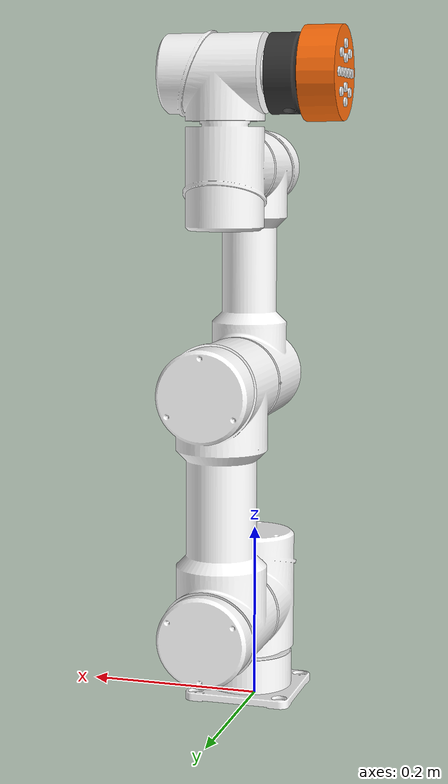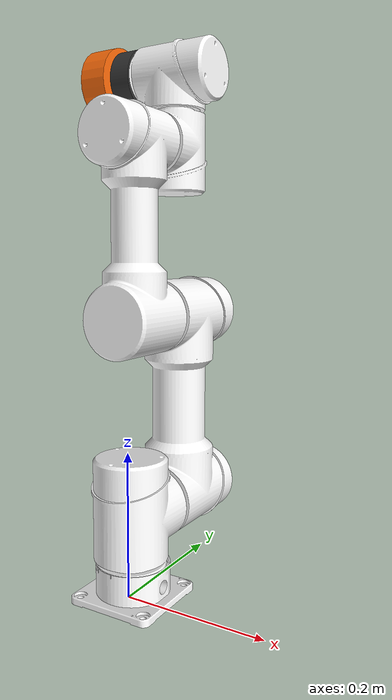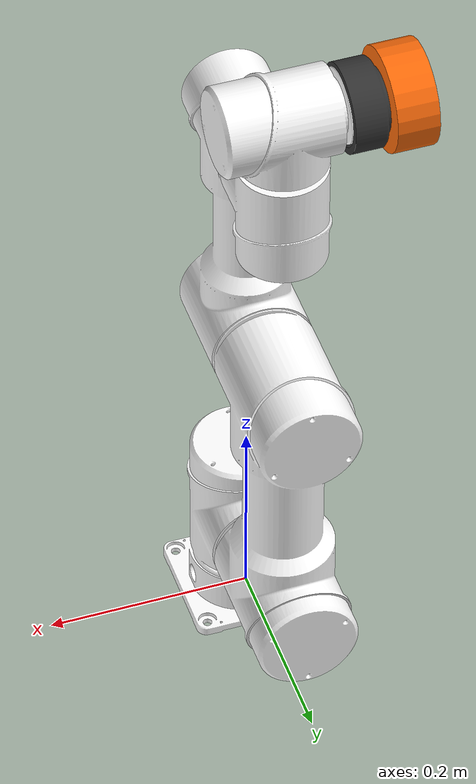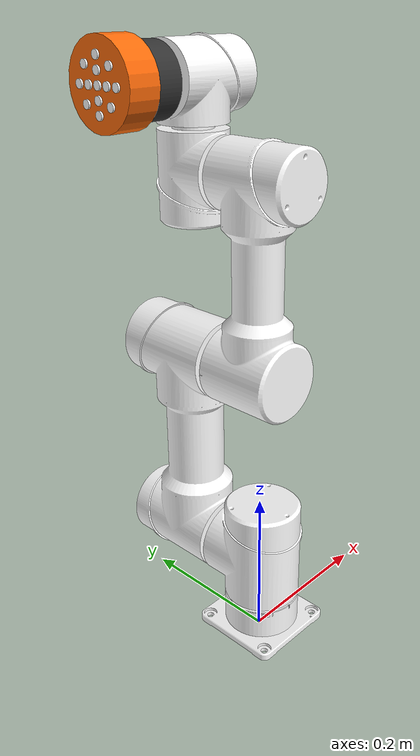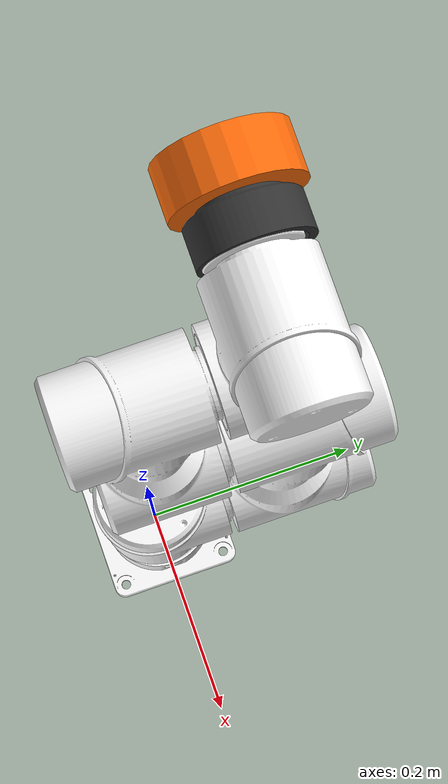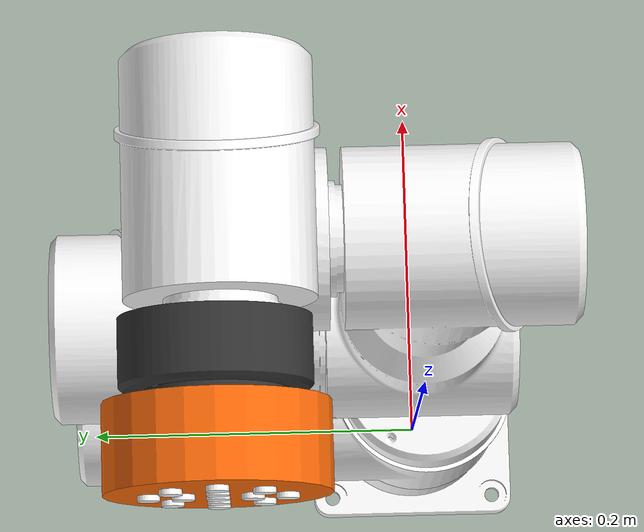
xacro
<?xml version="1.0"?>
<robot xmlns:xacro="http://www.ros.org/wiki/xacro" name="elerobot">

  <!-- Is the robot being simulated in gazebo?" -->
  <xacro:arg name="gazebo" default="true" />
  <!-- Intel RealSense i435 -->
  <xacro:arg name="with_camera" default="false" />

  <!-- Robot name -->
  <xacro:property name="arm_id" value="elerobot" />

  <xacro:include filename="$(find elerobot_description)/xacro/elerobot.xacro"/>

  <xacro:if value="$(arg gazebo)">
    <xacro:elerobot arm_id="${arm_id}" with_camera="$(arg with_camera)"/>

    <!-- gazebo color -->
    <xacro:gazebo_white link="${arm_id}_link0"/>
    <xacro:gazebo_white link="${arm_id}_link1"/>
    <xacro:gazebo_white link="${arm_id}_link2"/>
    <xacro:gazebo_white link="${arm_id}_link3"/>
    <xacro:gazebo_white link="${arm_id}_link4"/>
    <xacro:gazebo_white link="${arm_id}_link5"/>
    <xacro:gazebo_grey  link="${arm_id}_link6"/>
    <xacro:gazebo_red   link="${arm_id}_link7"/>

    <!-- gazebo joint hardware interface -->
    <xacro:gazebo-joint joint="${arm_id}_joint0" transmission="hardware_interface/PositionJointInterface" />
    <xacro:gazebo-joint joint="${arm_id}_joint1" transmission="hardware_interface/PositionJointInterface" />
    <xacro:gazebo-joint joint="${arm_id}_joint2" transmission="hardware_interface/PositionJointInterface" />
    <xacro:gazebo-joint joint="${arm_id}_joint3" transmission="hardware_interface/PositionJointInterface" />
    <xacro:gazebo-joint joint="${arm_id}_joint4" transmission="hardware_interface/PositionJointInterface" />
    <xacro:gazebo-joint joint="${arm_id}_joint5" transmission="hardware_interface/PositionJointInterface" />

    <!-- Gazebo plugin for ROS control -->
    <gazebo> <!-- controller -->
      <plugin name="gazebo_ros_control" filename="libgazebo_ros_control.so">
        <robotNamespace>/</robotNamespace>
        <controlPeriod>0.001</controlPeriod>
        <robotSimType>gazebo_ros_control/DefaultRobotHWSim</robotSimType>
        <legacyModeNS>true</legacyModeNS>
      </plugin>
      <self_collide>true</self_collide>

      <plugin filename="libgazebo_ros_moveit_planning_scene.so" name="gazebo_ros_moveit_planning_scene">
        <topicName>/planning_scene</topicName>
        <sceneName>factory</sceneName>
        <robotName>/${arm_id}</robotName>
        <updatePeriod>0.5</updatePeriod>
      </plugin>

      <plugin name="gravity_compensation" filename="libGravityCompensationPlugin.so"/>
    </gazebo>
  </xacro:if>

</robot>

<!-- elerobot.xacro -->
<robot xmlns:xacro="http://www.ros.org/wiki/xacro" name="elerobot">

  <!-- module -->
  <xacro:include filename="$(find elerobot_description)/xacro/color.xacro"/>
  <xacro:include filename="$(find elerobot_description)/xacro/property.xacro"/>
  <xacro:include filename="$(find elerobot_description)/xacro/vacuum_group.xacro"/>

  <!-- elephant panda robot p3 type description-->
  <xacro:macro name="elerobot" params="arm_id:='elerobot' with_camera:='false'">

    <!-- di435  frame definition can be found at https://github.com/IntelRealSense/librealsense/blob/master/doc/d435i.md -->
    <xacro:if value="${with_camera}">
      <xacro:include filename="$(find realsense_gazebo_description)/urdf/_d435i.urdf.xacro"/>
      <xacro:sensor_d435i  parent="${arm_id}_link7" name="D435i_camera" topics_ns="D435i_camera" enable_pointCloud="true" align_depth="false">
        <origin xyz="0.0 0.0 0.0" rpy="0.0 ${-PI/2} ${PI/2}"/>
      </xacro:sensor_d435i>
    </xacro:if>

    <!-- LINK DESCRIPTION -->
    <!-- Gazebo requires a joint to a link called "world" for statically mounted robots -->
    <link name="world" />
    <joint name="world_joint" type="fixed">
      <origin xyz="0.005 0.0 0.0" rpy="0.0 0.0 0.0"/>
      <parent link="world"/>
      <child link="${arm_id}_link0"/>
    </joint>

    <!-- link0 -->
    <link name="${arm_id}_link0">
      <visual>
        <origin xyz="-0.06 -0.06 0.053" rpy="${-PI/2} 0.0 0.0"/>
        <geometry>
          <mesh filename="${mesh_file_path}${mesh_prefix}0${mesh_suffix}" scale="0.001 0.001 0.001"/>
        </geometry>
        <material name="white"/>
      </visual>
      <collision>
        <origin xyz="-0.06 -0.06 0.053" rpy="${-PI/2} 0.0 0.0"/>
        <geometry>
          <mesh filename="${mesh_file_path}${mesh_prefix}0${mesh_suffix}" scale="0.001 0.001 0.001"/>
        </geometry>
        <material name="white"/>
      </collision>
      <inertial>
        <origin xyz="-0.0008 0.0091 0.0" rpy="0.0 0.0 0.0"/>
        <mass value="${link0_mass}"/>
        <inertia ixx="0.0017" ixy="0.0000" ixz="0.0000"
                              iyy="0.0028"  iyz="0.0000"
                                            izz="0.0017"/>
      </inertial>
    </link>

    <!-- link1 -->
    <link name="${arm_id}_link1">
      <visual>
        <origin xyz="-0.0528 -0.0528 -0.072" rpy="0.0 0.0 0.0"/>
        <geometry>
          <mesh filename="${mesh_file_path}${mesh_prefix}1${mesh_suffix}" scale="0.001 0.001 0.001"/>
        </geometry>
        <material name="white"/>
      </visual>
      <collision>
        <origin xyz="-0.0528 -0.0528 -0.072" rpy="0.0 0.0 0.0"/>
        <geometry>
          <mesh filename="${mesh_file_path}${mesh_prefix}1${mesh_suffix}" scale="0.001 0.001 0.001"/>
        </geometry>
        <material name="white"/>
      </collision>
      <inertial>
        <origin xyz="0.0 0.0032 0.0615" rpy="0.0 0.0 0.0"/>
        <mass value="${link1_mass}"/>
        <inertia ixx="0.0156" ixy="0.0000" ixz="0.0000"
                              iyy="0.0154" iyz="0.0004"
                                           izz="0.0034"/>
      </inertial>
    </link>

    <!-- link2 -->
    <link name="${arm_id}_link2">
      <visual>
        <origin xyz="-0.054 -0.053 0.15" rpy="${-PI/2} 0.0 0.0"/>
        <geometry>
          <mesh filename="${mesh_file_path}${mesh_prefix}2${mesh_suffix}" scale="0.001 0.001 0.001"/>
        </geometry>
        <material name="white"/>
      </visual>
      <collision>
        <origin xyz="-0.054 -0.053 0.15" rpy="${-PI/2} 0.0 0.0"/>
        <geometry>
          <mesh filename="${mesh_file_path}${mesh_prefix}2${mesh_suffix}" scale="0.001 0.001 0.001"/>
        </geometry>
        <material name="white"/>
      </collision>
      <inertial>
        <origin xyz="0.0 -0.0049 0.0" rpy="0.0 0.0 0.0"/>
        <mass value="${link2_mass}"/>
        <inertia ixx="0.0137" ixy="0.0000" ixz="0.0000"
                              iyy="0.0940" iyz="0.0000"
                                           izz="0.0997"/>
      </inertial>
    </link>

    <!-- link3 -->
    <link name="${arm_id}_link3">
      <visual>
        <origin xyz="0.2815 0.078 0.017" rpy="${-PI/2} 0.0 ${PI}"/>
        <geometry>
          <mesh filename="${mesh_file_path}${mesh_prefix}3${mesh_suffix}" scale="0.001 0.001 0.001"/>
        </geometry>
        <material name="white"/>
      </visual>
      <collision>
        <origin xyz="0.2815 0.078 0.017" rpy="${-PI/2} 0.0 ${PI}"/>
        <geometry>
          <mesh filename="${mesh_file_path}${mesh_prefix}3${mesh_suffix}" scale="0.001 0.001 0.001"/>
        </geometry>
        <material name="white"/>
      </collision>
      <inertial>
        <origin xyz="0.0052 0.0037 0.0" rpy="0.0 0.0 0.0"/>
        <mass value="${link3_mass}"/>
        <inertia ixx="0.0049" ixy="-0.0001" ixz="0.0000"
                              iyy="0.0446"  iyz="0.0000"
                                            izz="0.0456"/>
      </inertial>
    </link>

    <!-- link4 -->
    <link name="${arm_id}_link4">
      <visual>
        <origin xyz="-0.0772 -0.055 0.043" rpy="${-PI/2} 0.0 0.0"/>
        <geometry>
          <mesh filename="${mesh_file_path}${mesh_prefix}4${mesh_suffix}" scale="0.001 0.001 0.001"/>
        </geometry>
        <material name="white"/>
      </visual>
      <collision>
        <origin xyz="-0.0772 -0.055 0.043" rpy="${-PI/2} 0.0 0.0"/>
        <geometry>
          <mesh filename="${mesh_file_path}${mesh_prefix}4${mesh_suffix}" scale="0.001 0.001 0.001"/>
        </geometry>
        <material name="white"/>
      </collision>
      <inertial>
        <origin xyz="0.0 0.0 0.05" rpy="0.0 0.0 0.0"/>
        <mass value="${link4_mass}"/>
        <inertia ixx="0.01" ixy="0.0" ixz="0.0000"
                              iyy="0.01" iyz="0.0"
                                         izz="0.0"/>
      </inertial>
    </link>

    <!-- link5 -->
    <link name="${arm_id}_link5">
      <visual>
        <origin xyz="0.0745 0.0605 0.046" rpy="${-PI/2} 0.0 ${PI}"/>
        <geometry>
          <mesh filename="${mesh_file_path}${mesh_prefix}5${mesh_suffix}" scale="0.001 0.001 0.001"/>
        </geometry>
        <material name="white"/>
      </visual>
      <collision>
        <origin xyz="0.0745 0.0605 0.046" rpy="${-PI/2} 0.0 ${PI}"/>
        <geometry>
          <mesh filename="${mesh_file_path}${mesh_prefix}5${mesh_suffix}" scale="0.001 0.001 0.001"/>
        </geometry>
        <material name="white"/>
      </collision>
      <inertial>
        <origin xyz="0.0 0.0023 0.0506" rpy="0.0 0.0 0.0"/>
        <mass value="${link5_mass}"/>
        <inertia ixx="0.0059" ixy="0.0" ixz="0.0000"
                              iyy="0.0059" iyz="0.0002"
                                         izz="0.0014"/>
      </inertial>
    </link>

    <!-- link6 -->
    <link name="${arm_id}_link6">
      <visual>
        <origin xyz="-0.0425 -0.0425 -0.007" rpy="0.0 0.0 0.0"/>
        <geometry>
          <mesh filename="${mesh_file_path}${mesh_prefix}6${mesh_suffix}" scale="0.001 0.001 0.001"/>
        </geometry>
        <material name="grey"/>
      </visual>
      <collision>
        <origin xyz="-0.0425 -0.0425 -0.007" rpy="0.0 0.0 0.0"/>
        <geometry>
          <mesh filename="${mesh_file_path}${mesh_prefix}6${mesh_suffix}" scale="0.001 0.001 0.001"/>
        </geometry>
        <material name="grey"/>
      </collision>
      <inertial>
        <origin xyz="-0.0001 -0.00033 0.02" rpy="0.0 0.0 0.0"/>
        <mass value="${link6_mass}"/>
        <inertia ixx="0.0003" ixy="0.0"    ixz="0.0"
                              iyy="0.0003" iyz="0.0"
                                           izz="0.0003"/>
      </inertial>
    </link>

    <link name="${arm_id}_link7">
      <visual>
        <origin xyz="0.0 0.0 ${-link7_h/2}" rpy="0.0 0.0 0.0"/>
        <geometry>
          <cylinder radius="${link7_r}" length="${link7_h}"/>
        </geometry>
        <material name="orange"/>
      </visual>
      <collision>
        <origin xyz="0.0 0.0 ${-link7_h/2}" rpy="0.0 0.0 0.0"/>
        <geometry>
          <cylinder radius="${link7_r}" length="${link7_h}"/>
        </geometry>
      </collision>
      <inertial>
          <origin xyz="0.0 0.0 0.0" rpy="0.0 0.0 0.0"/>
          <mass value="${link7_mass}"/>
          <xacro:cylinder_inertia m="${link7_mass}" r="${link7_r}" h="${link7_h}"/>
      </inertial>
    </link>

    <!-- JOINT DESCRIPTION -->
    <!-- joint0 Locked -->
    <joint name="${arm_id}_joint0" type="revolute">
      <axis xyz="0 0 1"/>
      <origin xyz="0.0 0.0 ${joint0_z}" rpy="0.0 0.0 0.0"/>
      <safety_controller k_position="50.0" k_velocity="20.0" soft_lower_limit="${-PI*360/180}" soft_upper_limit="${PI*360/180}"/>
      <limit acceleration="15" effort="500.0" lower="${-PI*360/180}" upper="${PI*360/180}" velocity="${180/180*PI}"/>
      <parent link="${arm_id}_link0"/>
      <child link="${arm_id}_link1"/>
      <dynamics D="1" K="7000" mu_coulomb="0" mu_viscous="16" damping="0.003" friction="0.01"/>
    </joint>

    <!-- joint1 -->
    <joint name="${arm_id}_joint1" type="revolute">
      <axis xyz="0 0 1"/>
      <origin xyz="0.0 ${joint1_y} 0.0" rpy="0.0 ${-PI/2} ${-PI/2}"/>
      <safety_controller k_position="50.0" k_velocity="20.0" soft_lower_limit="${-PI*360/180}" soft_upper_limit="${PI*360/180}"/>
      <limit acceleration="15" effort="500.0" lower="${-PI*360/180}" upper="${PI*360/180}" velocity="${180/180*PI}"/>
      <parent link="${arm_id}_link1"/>
      <child link="${arm_id}_link2"/>
      <dynamics D="1" K="7000" mu_coulomb="0" mu_viscous="16" damping="0.003" friction="0.01"/>
    </joint>

    <!-- joint2 -->
    <joint name="${arm_id}_joint2" type="revolute">
      <axis xyz="0 0 1"/>
      <origin xyz="${joint2_x} 0.0 0.0" rpy="0.0 0.0 0.0"/>
      <safety_controller k_position="50.0" k_velocity="20.0" soft_lower_limit="${-PI*360/180}" soft_upper_limit="${PI*360/180}"/>
      <limit acceleration="15" effort="500.0" lower="${-PI*360/180}" upper="${PI*360/180}" velocity="${180/180*PI}"/>
      <parent link="${arm_id}_link2"/>
      <child link="${arm_id}_link3"/>
      <dynamics D="1" K="7000" mu_coulomb="0" mu_viscous="16" damping="0.003" friction="0.01"/>
    </joint>

    <!-- joint3 -->
    <joint name="${arm_id}_joint3" type="revolute">
      <axis xyz="0 0 1"/>
      <origin xyz="${joint3_x} 0.0 ${joint3_z}" rpy="0.0 0.0 ${PI/2}"/>
      <safety_controller k_position="50.0" k_velocity="20.0" soft_lower_limit="${-PI*360/180}" soft_upper_limit="${PI*360/180}"/>
      <limit acceleration="15" effort="500.0" lower="${-PI*360/180}" upper="${PI*360/180}" velocity="${208/180*PI}"/>
      <parent link="${arm_id}_link3"/>
      <child link="${arm_id}_link4"/>
      <dynamics D="1" K="7000" mu_coulomb="0" mu_viscous="16" damping="0.003" friction="0.01"/>
    </joint>

    <!-- joint4 -->
    <joint name="${arm_id}_joint4" type="revolute">
      <axis xyz="0 0 1"/>
      <origin xyz="0.0 ${joint4_y} 0.0" rpy="0.0 ${-PI/2} ${PI/2}"/>
      <safety_controller k_position="50.0" k_velocity="20.0" soft_lower_limit="${-PI*360/180}" soft_upper_limit="${PI*360/180}"/>
      <limit acceleration="15" effort="500.0" lower="${-PI*360/180}" upper="${PI*360/180}" velocity="${208/180*PI}"/>
      <parent link="${arm_id}_link4"/>
      <child link="${arm_id}_link5"/>
      <dynamics D="1" K="7000" mu_coulomb="0" mu_viscous="16" damping="0.003" friction="0.01"/>
    </joint>

    <!-- joint5 Locked -->
    <joint name="${arm_id}_joint5" type="revolute">
      <axis xyz="0 0 1"/>
      <origin xyz="0.0 ${joint5_y} 0.0" rpy="${-PI/2} 0.0 0.0"/>
      <safety_controller k_position="50.0" k_velocity="20.0" soft_lower_limit="${-PI*360/180}" soft_upper_limit="${PI*360/180}"/>
      <limit acceleration="15" effort="500.0" lower="${-PI*360/180}" upper="${PI*360/180}" velocity="${208/180*PI}"/>
      <parent link="${arm_id}_link5"/>
      <child link="${arm_id}_link6"/>
      <dynamics D="1" K="7000" mu_coulomb="0" mu_viscous="16" damping="0.003" friction="0.01"/>
    </joint>

    <!-- joint6 -->
    <joint name="${arm_id}_joint6" type="fixed">
      <origin xyz="0.0 0.0 ${joint6_z}" rpy="0.0 0.0 0.0"/>
      <parent link="${arm_id}_link6"/>
      <child link="${arm_id}_link7"/>
    </joint>

    <!-- vacuum gripper -->
    <xacro:vacuum_group parent_link="${arm_id}_link7" index="1" vacuum_x="0"                    vacuum_y="0"                   vacuum_z="${vacuum_length/2}"/>
    <xacro:vacuum_group parent_link="${arm_id}_link7" index="2" vacuum_x="${vacuum_radius*3}"   vacuum_y="0"                   vacuum_z="${vacuum_length/2}"/>
    <xacro:vacuum_group parent_link="${arm_id}_link7" index="3" vacuum_x="${-vacuum_radius*3}"  vacuum_y="0"                   vacuum_z="${vacuum_length/2}"/>
    <xacro:vacuum_group parent_link="${arm_id}_link7" index="4" vacuum_x="0"                    vacuum_y="${vacuum_radius*3}"  vacuum_z="${vacuum_length/2}"/>
    <xacro:vacuum_group parent_link="${arm_id}_link7" index="5" vacuum_x="0"                    vacuum_y="${-vacuum_radius*3}" vacuum_z="${vacuum_length/2}"/>
    <xacro:vacuum_group parent_link="${arm_id}_link7" index="6" vacuum_x="${vacuum_radius*6}"   vacuum_y="0"                   vacuum_z="${vacuum_length/2}"/>
    <xacro:vacuum_group parent_link="${arm_id}_link7" index="7" vacuum_x="${-vacuum_radius*6}"  vacuum_y="0"                   vacuum_z="${vacuum_length/2}"/>
    <xacro:vacuum_group parent_link="${arm_id}_link7" index="8" vacuum_x="0"                    vacuum_y="${vacuum_radius*6}"  vacuum_z="${vacuum_length/2}"/>
    <xacro:vacuum_group parent_link="${arm_id}_link7" index="9" vacuum_x="0"                    vacuum_y="${-vacuum_radius*6}" vacuum_z="${vacuum_length/2}"/>
    <xacro:vacuum_group parent_link="${arm_id}_link7" index="10" vacuum_x="${vacuum_radius*4}"  vacuum_y="${vacuum_radius*4}"  vacuum_z="${vacuum_length/2}"/>
    <xacro:vacuum_group parent_link="${arm_id}_link7" index="11" vacuum_x="${-vacuum_radius*4}" vacuum_y="${-vacuum_radius*4}" vacuum_z="${vacuum_length/2}"/>
    <xacro:vacuum_group parent_link="${arm_id}_link7" index="12" vacuum_x="${-vacuum_radius*4}" vacuum_y="${vacuum_radius*4}"  vacuum_z="${vacuum_length/2}"/>
    <xacro:vacuum_group parent_link="${arm_id}_link7" index="13" vacuum_x="${vacuum_radius*4}"  vacuum_y="${-vacuum_radius*4}" vacuum_z="${vacuum_length/2}"/>

  </xacro:macro>

</robot>

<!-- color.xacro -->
<robot xmlns:xacro="http://www.ros.org/wiki/xacro" name="rokae_arm">

  <!-- gazebo color -->
  <xacro:macro name="gazebo_white" params="link">
    <gazebo reference="${link}">
        <material>Gazebo/White</material>
    </gazebo>
  </xacro:macro>

  <xacro:macro name="gazebo_grey" params="link">
    <gazebo reference="${link}">
      <material>Gazebo/Grey</material>
    </gazebo>
  </xacro:macro>

  <xacro:macro name="gazebo_red" params="link">
    <gazebo reference="${link}">
      <material>Gazebo/Red</material>
      <mu1>0.61</mu1>
      <mu2>0.47</mu2>
    </gazebo>
  </xacro:macro>

  <!-- xacro color -->
  <material name="black">
    <color rgba="0.0 0.0 0.0 1.0"/>
  </material>

  <material name="blue">
    <color rgba="0.0 0.0 0.8 1.0"/>
  </material>

  <material name="green">
    <color rgba="0.0 0.8 0.0 1.0"/>
  </material>

  <material name="grey">
    <color rgba="0.2 0.2 0.2 1.0"/>
  </material>

  <material name="orange">
    <color rgba="${255/255} ${108/255} ${10/255} 1.0"/>
  </material>

  <material name="brown">
    <color rgba="${222/255} ${207/255} ${195/255} 1.0"/>
  </material>

  <material name="red">
    <color rgba="0.8 0.0 0.0 1.0"/>
  </material>

  <material name="white">
    <color rgba="1.0 1.0 1.0 1.0"/>
  </material>

</robot>

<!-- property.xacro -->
<robot xmlns:xacro="http://www.ros.org/wiki/xacro" name="elerobot">

  <!-- mesh -->
  <xacro:property name="mesh_file_path" value="package://elerobot_description/mesh/"/>
  <xacro:property name="mesh_prefix" value="ERP03D_LINK"/>
  <xacro:property name="mesh_suffix" value=".STL"/>

  <!-- property -->
  <xacro:property name="PI" value="3.1415926535"/>

  <!-- link mass -->
  <xacro:property name="link0_mass" value="1.171"/>
  <xacro:property name="link1_mass" value="2.488"/>
  <xacro:property name="link2_mass" value="6.628"/>
  <xacro:property name="link3_mass" value="3.88"/>
  <xacro:property name="link4_mass" value="1.42"/>
  <xacro:property name="link5_mass" value="1.417"/>
  <xacro:property name="link6_mass" value="0.3158"/>
  <xacro:property name="link7_mass" value="0.1"/>

  <!-- link property -->
  <xacro:property name="link7_r" value="0.05"/>
  <xacro:property name="link7_h" value="0.04"/>

  <!-- vaccum property -->
  <xacro:property name="vacuum_radius" value="0.005"/>
  <xacro:property name="vacuum_length" value="0.005"/>

  <!-- joint position -->
  <xacro:property name="joint0_z" value="0.115"/>
  <xacro:property name="joint1_y" value="0.055"/>
  <xacro:property name="joint2_x" value="0.265"/>
  <xacro:property name="joint3_x" value="0.24"/>
  <xacro:property name="joint3_z" value="0.06"/>
  <xacro:property name="joint4_y" value="-0.095"/>
  <xacro:property name="joint5_y" value="0.06"/>
  <xacro:property name="joint6_z" value="${link7_h+0.03}"/>

  <!-- inertia -->
  <xacro:macro name="cylinder_inertia" params="m r h">
    <inertia  ixx="${m*(3*r*r+h*h)/12}" ixy = "0" ixz = "0"
      iyy="${m*(3*r*r+h*h)/12}" iyz = "0"
      izz="${m*r*r/2}"
    />
  </xacro:macro>

  <!-- MACRO: transmission of the joint-->
  <![CDATA[
  Arm_Part: Actuator, Joint, etc
  Effort ${Arm_Part} Interface - for commanding effort-based joints.
  Velocity ${Arm_Part} Interface - for commanding velocity-based joints.
  Position ${Arm_Part} Interface - for commanding position-based joints.
  ]]>
  <xacro:macro name="gazebo-joint" params="joint transmission:=hardware_interface/PositionJointInterface">
    <gazebo reference="${joint}">
      <!-- Needed for ODE to output external wrenches on joints -->
      <provideFeedback>true</provideFeedback>
    </gazebo>

    <transmission name="${joint}_transmission">
      <type>transmission_interface/SimpleTransmission</type>
      <joint name="${joint}">
        <hardwareInterface>${transmission}</hardwareInterface>
      </joint>
      <actuator name="${joint}_motor">
        <hardwareInterface>${transmission}</hardwareInterface>
        <mechanicalReduction>1</mechanicalReduction>
      </actuator>
    </transmission>
  </xacro:macro>

</robot>

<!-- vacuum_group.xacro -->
<robot xmlns:xacro="http://www.ros.org/wiki/xacro" name="rokae_arm">

  <xacro:macro name="vacuum_group" params="parent_link index vacuum_x vacuum_y vacuum_z">
    <xacro:property name="vacuum_gripper" value="vacuum_gripper_${index}"/>
    <xacro:property name="gripper_joint" value="vacuum_joint_${index}"/>

    <link name="${vacuum_gripper}">
      <gravity>0</gravity>
      <visual>
        <origin rpy="0 0 0" xyz="0 0 ${-vacuum_length/2}"/>
        <geometry>
          <cylinder radius="${vacuum_radius}" length="${vacuum_length}"/>
        </geometry>
        <material name="transparent">
          <color rgba="255 255 255 0.8"/>
        </material>
      </visual>
      <collision>
        <origin rpy="0 0 0" xyz="0 0 ${-vacuum_length/2}"/>
        <geometry>
          <cylinder radius="${vacuum_radius}" length="${vacuum_length/10}"/>
        </geometry>
        <material name="transparent">
          <color rgba="255 255 255 0.8"/>
        </material>
      </collision>
      <inertial>
        <origin rpy="0 0 0" xyz="0.000000 0.000000 0.000000"/>
        <mass value="0.0001"/>
        <inertia ixx="1e-08" ixy="0" ixz="0" iyy="1e-08" iyz="0" izz="1e-08"/>
      </inertial>
    </link>

    <joint name="${gripper_joint}" type="revolute">
      <axis xyz="0 0 1" />
      <parent link="${parent_link}" />
      <child link="${vacuum_gripper}" />
      <origin rpy="0 0 0" xyz="${vacuum_x} ${vacuum_y} ${vacuum_z}" />
      <limit effort="50" velocity="50" lower="0" upper="0" />
      <dynamics damping="0.0" friction="10"/>
    </joint>

    <![CDATA[
    <joint name="${gripper_joint}" type="fixed">
      <parent link="${parent_link}" />
      <child link="${vacuum_gripper}" />
      <origin rpy="0 0 0" xyz="${vacuum_x} ${vacuum_y} ${vacuum_z}" />
    </joint>
    ]]>

    <gazebo>
      <plugin name="gazebo_ros_vacuum_gripper_${index}" filename="libgazebo_ros_vacuum_gripper.so">
        <robotNamespace>/rokae_arm/${vacuum_gripper}</robotNamespace>
        <bodyName>${vacuum_gripper}</bodyName>
        <topicName>grasping_${index}</topicName>
        <maxForce>100</maxForce>
        <maxDistance>0.05</maxDistance>
        <minDistance>0.01</minDistance>
      </plugin>
    </gazebo>

  </xacro:macro>
</robot>
